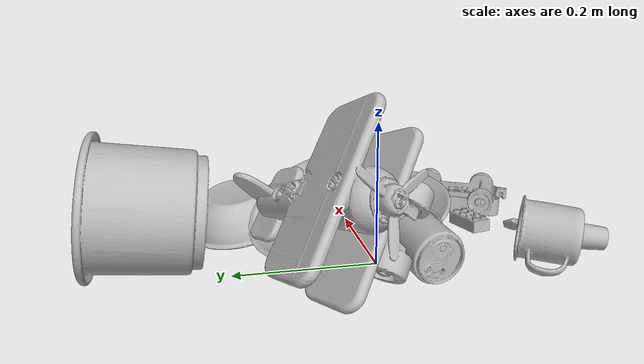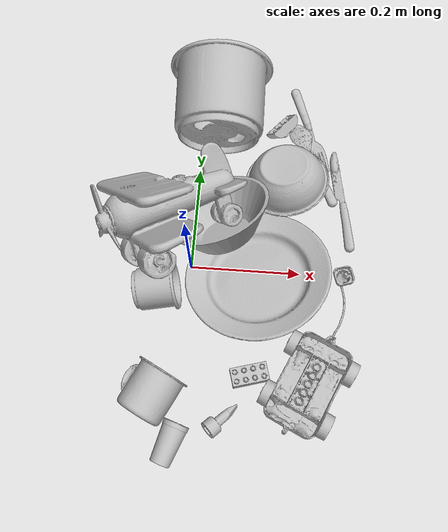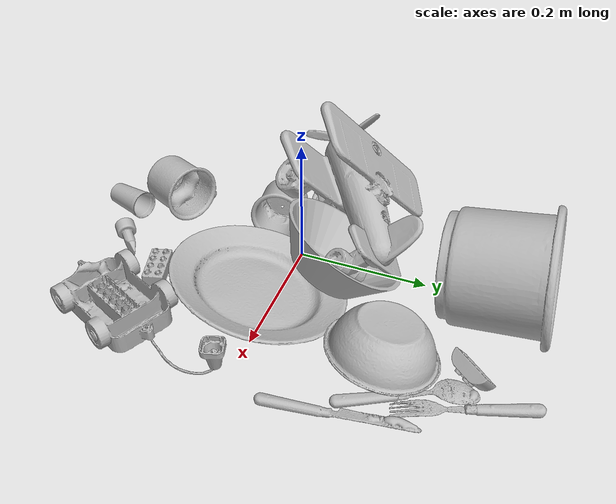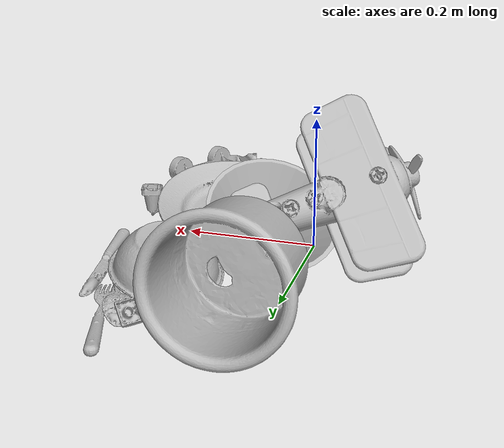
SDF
<sdf version="1.4">
  <world name="default">
    <light name="light1" type="point">
      <pose>0 0 1 0 0 0</pose>
      <diffuse>3 3 3 1</diffuse>
      <specular>3 3 3 1</specular>
    </light>
    <light name="light2" type="point">
      <pose>0 0.5 2 0 0 0</pose>
      <diffuse>1 1 1 1</diffuse>
      <specular>1 1 1 1</specular>
    </light>
    <light name="light3" type="point">
      <pose>0 0.5 2 0 0 0</pose>
      <diffuse>3 3 3 1</diffuse>
      <specular>3 3 3 1</specular>
    </light>
    <scene>
      <ambient>0.7 0.7 0.7</ambient>
    </scene>
    <model name="plate1">
      <link name="link_plate1">
        <collision name="default">
          <geometry>
            <mesh>
              <uri>model://plate/collision_meshes/collision.obj</uri>
              <scale>1.0 1.0 1.0</scale>
            </mesh>
          </geometry>
          <surface>
            <friction>
              <ode>
                <mu>0.5</mu>
                <mu2>0.5</mu2>
              </ode>
            </friction>
          <contact>
        <ode>
            <max_vel>0</max_vel>
            <min_depth>0.0001</min_depth>
            <kp>1e8</kp>
        </ode>
    </contact></surface>
        </collision>
        <visual name="default">
          <geometry>
            <mesh>
              <uri>model://plate/visual_meshes/visual.dae</uri>
              <scale>1.0 1.0 1.0</scale>
            </mesh>
          </geometry>
        </visual>
        <inertial>
          <mass>0.22833794355392456</mass>
          <pose>-0.000604461005423218 0.00027825840516015887 -0.0010561991948634386 0.0022188074693480237 -0.003225470002654536 0.4526028307495764</pose>
          <inertia>
            <ixx>0.0010681693</ixx>
            <iyy>0.0010579526</iyy>
            <izz>0.0020891798</izz>
            <ixy>0</ixy>
            <ixz>0</ixz>
            <iyz>0</iyz>
          </inertia>
        </inertial>
      </link>
      <pose>0.12300107628107071 -0.01921192929148674 0.03402163088321686 0.24494380572031926 0.1019936206242423 -2.8326703975854146</pose>
    </model>
    <model name="cup1">
      <link name="link_cup1">
        <collision name="default">
          <geometry>
            <mesh>
              <uri>model://i_cups/collision_meshes/collision.obj</uri>
              <scale>2.0 2.0 2.0</scale>
            </mesh>
          </geometry>
          <surface>
            <friction>
              <ode>
                <mu>0.5</mu>
                <mu2>0.5</mu2>
              </ode>
            </friction>
          <contact>
        <ode>
            <max_vel>0</max_vel>
            <min_depth>0.0001</min_depth>
            <kp>1e8</kp>
        </ode>
    </contact></surface>
        </collision>
        <visual name="default">
          <geometry>
            <mesh>
              <uri>model://i_cups/visual_meshes/visual.dae</uri>
              <scale>2.0 2.0 2.0</scale>
            </mesh>
          </geometry>
        </visual>
        <inertial>
          <mass>0.4681873917579651</mass>
          <pose>0.00022480281768366694 0.00033594679553061724 -0.001715805265121162 -0.028982833374769763 -0.039873302367341296 -0.3459182567321849</pose>
          <inertia>
            <ixx>0.0025928493</ixx>
            <iyy>0.0026156942</iyy>
            <izz>0.0028979292</izz>
            <ixy>0</ixy>
            <ixz>0</ixz>
            <iyz>0</iyz>
          </inertia>
        </inertial>
      </link>
      <pose>0.03164752200245857 0.30380624532699585 0.0897216871380806 1.440901004557099 -0.3970161753269263 -3.0688508983080127</pose>
    </model>
    <model name="silverware1">
      <link name="link_silverware1">
        <collision name="default">
          <geometry>
            <mesh>
              <uri>model://fork/collision_meshes/collision.obj</uri>
              <scale>1.0 1.0 1.0</scale>
            </mesh>
          </geometry>
          <surface>
            <friction>
              <ode>
                <mu>0.5</mu>
                <mu2>0.5</mu2>
              </ode>
            </friction>
          <contact>
        <ode>
            <max_vel>0</max_vel>
            <min_depth>0.0001</min_depth>
            <kp>1e8</kp>
        </ode>
    </contact></surface>
        </collision>
        <visual name="default">
          <geometry>
            <mesh>
              <uri>model://fork/visual_meshes/visual.dae</uri>
              <scale>1.0 1.0 1.0</scale>
            </mesh>
          </geometry>
        </visual>
        <inertial>
          <mass>0.027571624144911766</mass>
          <pose>-0.02957003377377987 0.00046588233090005815 0.00032188609475269914 -0.013550958023284024 -0.010977835737993834 0.014453901364285019</pose>
          <inertia>
            <ixx>9.665413e-07</ixx>
            <iyy>7.198156e-05</iyy>
            <izz>7.24139e-05</izz>
            <ixy>0</ixy>
            <ixz>0</ixz>
            <iyz>0</iyz>
          </inertia>
        </inertial>
      </link>
      <pose>0.21043717861175537 0.30652111768722534 0.00744660384953022 -3.0636689374671318 0.0028306320890682107 -1.2306045492718893</pose>
    </model>
    <model name="silverware2">
      <link name="link_silverware2">
        <collision name="default">
          <geometry>
            <mesh>
              <uri>model://spoon/collision_meshes/collision.obj</uri>
              <scale>1.0 1.0 1.0</scale>
            </mesh>
          </geometry>
          <surface>
            <friction>
              <ode>
                <mu>0.5</mu>
                <mu2>0.5</mu2>
              </ode>
            </friction>
          <contact>
        <ode>
            <max_vel>0</max_vel>
            <min_depth>0.0001</min_depth>
            <kp>1e8</kp>
        </ode>
    </contact></surface>
        </collision>
        <visual name="default">
          <geometry>
            <mesh>
              <uri>model://spoon/visual_meshes/visual.dae</uri>
              <scale>1.0 1.0 1.0</scale>
            </mesh>
          </geometry>
        </visual>
        <inertial>
          <mass>0.026229728013277054</mass>
          <pose>-0.005526318680495024 -0.001603417913429439 -0.0007271656068041921 0.03521671072465583 -0.039065837568760656 0.006150610113583586</pose>
          <inertia>
            <ixx>1.4589405e-06</ixx>
            <iyy>9.980327e-05</iyy>
            <izz>0.00010052276</izz>
            <ixy>0</ixy>
            <ixz>0</ixz>
            <iyz>0</iyz>
          </inertia>
        </inertial>
      </link>
      <pose>0.22168895602226257 0.230089008808136 0.01020060759037733 3.084526001253417 -0.0612444258178818 2.009555283068506</pose>
    </model>
    <model name="silverware3">
      <link name="link_silverware3">
        <collision name="default">
          <geometry>
            <mesh>
              <uri>model://knife/collision_meshes/collision.obj</uri>
              <scale>1.0 1.0 1.0</scale>
            </mesh>
          </geometry>
          <surface>
            <friction>
              <ode>
                <mu>0.5</mu>
                <mu2>0.5</mu2>
              </ode>
            </friction>
          <contact>
        <ode>
            <max_vel>0</max_vel>
            <min_depth>0.0001</min_depth>
            <kp>1e8</kp>
        </ode>
    </contact></surface>
        </collision>
        <visual name="default">
          <geometry>
            <mesh>
              <uri>model://knife/visual_meshes/visual.dae</uri>
              <scale>1.0 1.0 1.0</scale>
            </mesh>
          </geometry>
        </visual>
        <inertial>
          <mass>0.02346421591937542</mass>
          <pose>-0.02378525584936142 0.0015275125624611974 5.062017953605391e-05 0.07305400797241687 0.017248417900584085 -0.007409820985288758</pose>
          <inertia>
            <ixx>6.6600956e-07</ixx>
            <iyy>9.0145724e-05</iyy>
            <izz>9.036023e-05</izz>
            <ixy>0</ixy>
            <ixz>0</ixz>
            <iyz>0</iyz>
          </inertia>
        </inertial>
      </link>
      <pose>0.2736598253250122 0.15389452874660492 0.005810789298266172 2.889429039133152 0.025916939504525116 1.7269091418570683</pose>
    </model>
    <model name="cup3">
      <link name="link_cup3">
        <collision name="default">
          <geometry>
            <mesh>
              <uri>model://g_cups/collision_meshes/collision.obj</uri>
              <scale>1.0 1.0 1.0</scale>
            </mesh>
          </geometry>
          <surface>
            <friction>
              <ode>
                <mu>0.5</mu>
                <mu2>0.5</mu2>
              </ode>
            </friction>
          <contact>
        <ode>
            <max_vel>0</max_vel>
            <min_depth>0.0001</min_depth>
            <kp>1e8</kp>
        </ode>
    </contact></surface>
        </collision>
        <visual name="default">
          <geometry>
            <mesh>
              <uri>model://g_cups/visual_meshes/visual.dae</uri>
              <scale>1.0 1.0 1.0</scale>
            </mesh>
          </geometry>
        </visual>
        <inertial>
          <mass>0.061065707355737686</mass>
          <pose>-0.0007946277037262917 -4.2064726585522294e-05 -0.002132938476279378 -0.21381528234109023 -0.31410608856426947 0.31118675593786127</pose>
          <inertia>
            <ixx>7.1277376e-05</ixx>
            <iyy>7.10349e-05</iyy>
            <izz>7.383109e-05</izz>
            <ixy>0</ixy>
            <ixz>0</ixz>
            <iyz>0</iyz>
          </inertia>
        </inertial>
      </link>
      <pose>-0.05441376194357872 -0.054798685014247894 0.04019815847277641 1.4575009730975208 -0.16845000589302467 1.767668253185923</pose>
    </model>
    <model name="cup4">
      <link name="link_cup4">
        <collision name="default">
          <geometry>
            <mesh>
              <uri>model://mug/collision_meshes/collision.obj</uri>
              <scale>1.0 1.0 1.0</scale>
            </mesh>
          </geometry>
          <surface>
            <friction>
              <ode>
                <mu>0.5</mu>
                <mu2>0.5</mu2>
              </ode>
            </friction>
          <contact>
        <ode>
            <max_vel>0</max_vel>
            <min_depth>0.0001</min_depth>
            <kp>1e8</kp>
        </ode>
    </contact></surface>
        </collision>
        <visual name="default">
          <geometry>
            <mesh>
              <uri>model://mug/visual_meshes/visual.dae</uri>
              <scale>1.0 1.0 1.0</scale>
            </mesh>
          </geometry>
        </visual>
        <inertial>
          <mass>0.23807048797607422</mass>
          <pose>0.009571674279868603 0.0008143257582560182 -0.010947330854833126 -0.1298314387661624 0.08737745525079747 0.05507303490292968</pose>
          <inertia>
            <ixx>0.00023648023</ixx>
            <iyy>0.0002641344</iyy>
            <izz>0.00030547503</izz>
            <ixy>0</ixy>
            <ixz>0</ixz>
            <iyz>0</iyz>
          </inertia>
        </inertial>
      </link>
      <pose>-0.051723673939704895 -0.23093269765377045 0.03762594610452652 -1.4681821206850747 -0.6051365207727663 -0.5404850065648835</pose>
    </model>
    <model name="cup5">
      <link name="link_cup5">
        <collision name="default">
          <geometry>
            <mesh>
              <uri>model://cup_small/collision_meshes/collision.obj</uri>
              <scale>1.0 1.0 1.0</scale>
            </mesh>
          </geometry>
          <surface>
            <friction>
              <ode>
                <mu>0.5</mu>
                <mu2>0.5</mu2>
              </ode>
            </friction>
          <contact>
        <ode>
            <max_vel>0</max_vel>
            <min_depth>0.0001</min_depth>
            <kp>1e8</kp>
        </ode>
    </contact></surface>
        </collision>
        <visual name="default">
          <geometry>
            <mesh>
              <uri>model://cup_small/visual_meshes/visual.dae</uri>
              <scale>1.0 1.0 1.0</scale>
            </mesh>
          </geometry>
        </visual>
        <inertial>
          <mass>0.034257128834724426</mass>
          <pose>0.00010482469951966777 -0.00033778377110138535 -0.01074282731860876 -0.011493012610900502 -0.015280351102743797 -0.5058271067899499</pose>
          <inertia>
            <ixx>2.0170073e-05</ixx>
            <iyy>2.0274121e-05</iyy>
            <izz>9.106847e-06</izz>
            <ixy>0</ixy>
            <ixz>0</ixz>
            <iyz>0</iyz>
          </inertia>
        </inertial>
      </link>
      <pose>-0.0078447125852108 -0.3116806149482727 0.01971677877008915 -1.4731770022204869 0.45568069965351504 -0.28518161943738907</pose>
    </model>
    <model name="bowl1">
      <link name="link_bowl1">
        <collision name="default">
          <geometry>
            <mesh>
              <uri>model://bowl/collision_meshes/collision.obj</uri>
              <scale>1.0 1.0 1.0</scale>
            </mesh>
          </geometry>
          <surface>
            <friction>
              <ode>
                <mu>0.5</mu>
                <mu2>0.5</mu2>
              </ode>
            </friction>
          <contact>
        <ode>
            <max_vel>0</max_vel>
            <min_depth>0.0001</min_depth>
            <kp>1e8</kp>
        </ode>
    </contact></surface>
        </collision>
        <visual name="default">
          <geometry>
            <mesh>
              <uri>model://bowl/visual_meshes/visual.dae</uri>
              <scale>1.0 1.0 1.0</scale>
            </mesh>
          </geometry>
        </visual>
        <inertial>
          <mass>0.06465846300125122</mass>
          <pose>0.0002044529392151162 -0.0010302059818059206 -0.0008042643894441426 -0.015764115524798613 0.014546769889283702 0.7140385686011532</pose>
          <inertia>
            <ixx>0.00014852564</ixx>
            <iyy>0.000145207</iyy>
            <izz>0.00024987117</izz>
            <ixy>0</ixy>
            <ixz>0</ixz>
            <iyz>0</iyz>
          </inertia>
        </inertial>
      </link>
      <pose>0.16361458599567413 0.18427643179893494 0.04399998113512993 2.927236761286538 -0.0374635375691376 0.735266734459718</pose>
    </model>
    <model name="bowl2">
      <link name="link_bowl2">
        <collision name="default">
          <geometry>
            <mesh>
              <uri>model://bowl_a/collision_meshes/collision.obj</uri>
              <scale>1.0 1.0 1.0</scale>
            </mesh>
          </geometry>
          <surface>
            <friction>
              <ode>
                <mu>0.5</mu>
                <mu2>0.5</mu2>
              </ode>
            </friction>
          <contact>
        <ode>
            <max_vel>0</max_vel>
            <min_depth>0.0001</min_depth>
            <kp>1e8</kp>
        </ode>
    </contact></surface>
        </collision>
        <visual name="default">
          <geometry>
            <mesh>
              <uri>model://bowl_a/visual_meshes/visual.dae</uri>
              <scale>1.0 1.0 1.0</scale>
            </mesh>
          </geometry>
        </visual>
        <inertial>
          <mass>0.4949932396411896</mass>
          <pose>0.00027867621975019574 4.730939326691441e-05 -0.0013765293406322598 -0.0009805412802391578 -0.001093824733375575 -0.19123603072484788</pose>
          <inertia>
            <ixx>0.0014092687</ixx>
            <iyy>0.0014179207</iyy>
            <izz>0.0025064375</izz>
            <ixy>0</ixy>
            <ixz>0</ixz>
            <iyz>0</iyz>
          </inertia>
        </inertial>
      </link>
      <pose>0.05068925395607948 0.07067327946424484 0.05712362006306648 -0.31205968072535933 0.5342195984845677 1.6514110888890592</pose>
    </model>
    <model name="toy1">
      <link name="link_toy1">
        <collision name="default">
          <geometry>
            <mesh>
              <uri>model://a_toy_airplane/collision_meshes/collision.obj</uri>
              <scale>1.0 1.0 1.0</scale>
            </mesh>
          </geometry>
          <surface>
            <friction>
              <ode>
                <mu>0.5</mu>
                <mu2>0.5</mu2>
              </ode>
            </friction>
          <contact>
        <ode>
            <max_vel>0</max_vel>
            <min_depth>0.0001</min_depth>
            <kp>1e8</kp>
        </ode>
    </contact></surface>
        </collision>
        <visual name="default">
          <geometry>
            <mesh>
              <uri>model://a_toy_airplane/visual_meshes/visual.dae</uri>
              <scale>1.0 1.0 1.0</scale>
            </mesh>
          </geometry>
        </visual>
        <inertial>
          <mass>1.5726872682571411</mass>
          <pose>0.025165090337395668 -0.003707318101078272 -0.0011962441494688392 -0.012016975653996446 -0.14663502644886817 0.00414906395026872</pose>
          <inertia>
            <ixx>0.0057111816</ixx>
            <iyy>0.008322349</iyy>
            <izz>0.009744448</izz>
            <ixy>0</ixy>
            <ixz>0</ixz>
            <iyz>0</iyz>
          </inertia>
        </inertial>
      </link>
      <pose>-0.03592143952846527 0.0786178857088089 0.11035334318876266 0.8343336744497859 -0.1048603996157824 -2.4499174434100137</pose>
    </model>
    <model name="toy2">
      <link name="link_toy2">
        <collision name="default">
          <geometry>
            <mesh>
              <uri>model://g_lego_duplo/collision_meshes/collision.obj</uri>
              <scale>1.0 1.0 1.0</scale>
            </mesh>
          </geometry>
          <surface>
            <friction>
              <ode>
                <mu>0.5</mu>
                <mu2>0.5</mu2>
              </ode>
            </friction>
          <contact>
        <ode>
            <max_vel>0</max_vel>
            <min_depth>0.0001</min_depth>
            <kp>1e8</kp>
        </ode>
    </contact></surface>
        </collision>
        <visual name="default">
          <geometry>
            <mesh>
              <uri>model://g_lego_duplo/visual_meshes/visual.dae</uri>
              <scale>1.0 1.0 1.0</scale>
            </mesh>
          </geometry>
        </visual>
        <inertial>
          <mass>0.27239978313446045</mass>
          <pose>-0.05004768446087837 0.0017554647056385875 0.003880675882101059 0.010962999716487856 0.03810827607734427 -0.09653019061870628</pose>
          <inertia>
            <ixx>0.00039471043</ixx>
            <iyy>0.0011933373</iyy>
            <izz>0.0014929089</izz>
            <ixy>0</ixy>
            <ixz>0</ixz>
            <iyz>0</iyz>
          </inertia>
        </inertial>
      </link>
      <pose>0.23970256745815277 -0.14566561579704285 0.027629004791378975 -3.1415923760789064 -0.03027973366582651 1.128391305072511</pose>
    </model>
    <model name="toy3">
      <link name="link_toy3">
        <collision name="default">
          <geometry>
            <mesh>
              <uri>model://e_toy_airplane/collision_meshes/collision.obj</uri>
              <scale>1.0 1.0 1.0</scale>
            </mesh>
          </geometry>
          <surface>
            <friction>
              <ode>
                <mu>0.5</mu>
                <mu2>0.5</mu2>
              </ode>
            </friction>
          <contact>
        <ode>
            <max_vel>0</max_vel>
            <min_depth>0.0001</min_depth>
            <kp>1e8</kp>
        </ode>
    </contact></surface>
        </collision>
        <visual name="default">
          <geometry>
            <mesh>
              <uri>model://e_toy_airplane/visual_meshes/visual.dae</uri>
              <scale>1.0 1.0 1.0</scale>
            </mesh>
          </geometry>
        </visual>
        <inertial>
          <mass>0.02767481654882431</mass>
          <pose>0.00011740472837118432 -2.2482989152194932e-05 -0.011187202297151089 0.005518508312800945 0.009228282632666047 0.1504154330375105</pose>
          <inertia>
            <ixx>8.446671e-06</ixx>
            <iyy>8.360266e-06</iyy>
            <izz>2.5385568e-06</izz>
            <ixy>0</ixy>
            <ixz>0</ixz>
            <iyz>0</iyz>
          </inertia>
        </inertial>
      </link>
      <pose>0.07732173055410385 -0.2653661370277405 0.012364791706204414 1.753279464292023 0.3755410330601917 2.3985367238545217</pose>
    </model>
    <model name="toy4">
      <link name="link_toy4">
        <collision name="default">
          <geometry>
            <mesh>
              <uri>model://c_lego_duplo/collision_meshes/collision.obj</uri>
              <scale>1.0 1.0 1.0</scale>
            </mesh>
          </geometry>
          <surface>
            <friction>
              <ode>
                <mu>0.5</mu>
                <mu2>0.5</mu2>
              </ode>
            </friction>
          <contact>
        <ode>
            <max_vel>0</max_vel>
            <min_depth>0.0001</min_depth>
            <kp>1e8</kp>
        </ode>
    </contact></surface>
        </collision>
        <visual name="default">
          <geometry>
            <mesh>
              <uri>model://c_lego_duplo/visual_meshes/visual.dae</uri>
              <scale>1.0 1.0 1.0</scale>
            </mesh>
          </geometry>
        </visual>
        <inertial>
          <mass>0.027596205472946167</mass>
          <pose>0.0003164597146678716 0.00019464619981590658 0.0010453155264258385 -0.011520800817134696 0.005900104067849837 0.03110033537421094</pose>
          <inertia>
            <ixx>1.0619538e-05</ixx>
            <iyy>3.3922634e-06</iyy>
            <izz>1.2410018e-05</izz>
            <ixy>0</ixy>
            <ixz>0</ixz>
            <iyz>0</iyz>
          </inertia>
        </inertial>
      </link>
      <pose>0.11847227811813354 -0.19044019281864166 0.011981486342847347 0.008019260969924075 -0.0020915626423450235 1.8175482957085602</pose>
    </model>
    <model name="toy5">
      <link name="link_toy5">
        <collision name="default">
          <geometry>
            <mesh>
              <uri>model://a_lego_duplo/collision_meshes/collision.obj</uri>
              <scale>1.0 1.0 1.0</scale>
            </mesh>
          </geometry>
          <surface>
            <friction>
              <ode>
                <mu>0.5</mu>
                <mu2>0.5</mu2>
              </ode>
            </friction>
          <contact>
        <ode>
            <max_vel>0</max_vel>
            <min_depth>0.0001</min_depth>
            <kp>1e8</kp>
        </ode>
    </contact></surface>
        </collision>
        <visual name="default">
          <geometry>
            <mesh>
              <uri>model://a_lego_duplo/visual_meshes/visual.dae</uri>
              <scale>1.0 1.0 1.0</scale>
            </mesh>
          </geometry>
        </visual>
        <inertial>
          <mass>0.011767913587391376</mass>
          <pose>-0.00011337622709106654 0.00018517576972953975 0.0003692608152050525 -0.0141170192796563 -0.00012565406274383194 6.140908251533293e-05</pose>
          <inertia>
            <ixx>1.5087408e-06</ixx>
            <iyy>3.3799095e-06</iyy>
            <izz>4.186769e-06</izz>
            <ixy>0</ixy>
            <ixz>0</ixz>
            <iyz>0</iyz>
          </inertia>
        </inertial>
      </link>
      <pose>0.1588708609342575 0.29755669832229614 0.017251048237085342 2.245875964358437 9.050215359830016e-06 0.8577889583159848</pose>
    </model>
  <physics type="ode">
      <max_contacts>50</max_contacts>
      <ode>
        <solver>
          <type>quick</type>
          <iters>75</iters>
        </solver>
        <constraints>
          <contact_max_correcting_vel>0</contact_max_correcting_vel>
          <contact_surface_layer>0</contact_surface_layer>
        </constraints>
      </ode>
    </physics></world>
</sdf>
